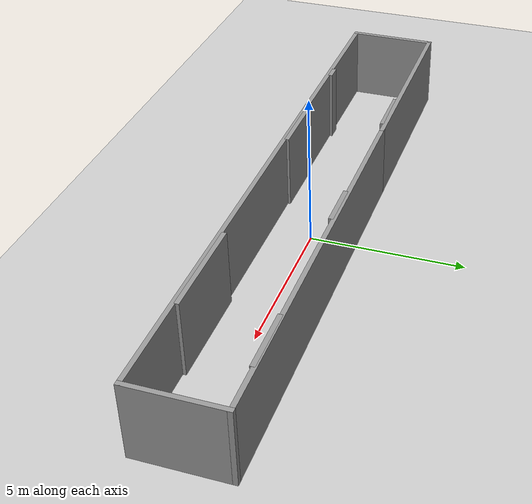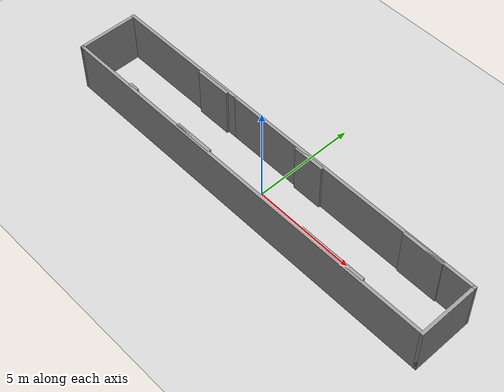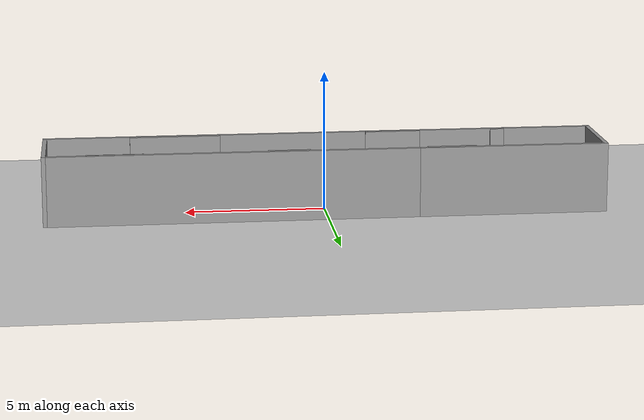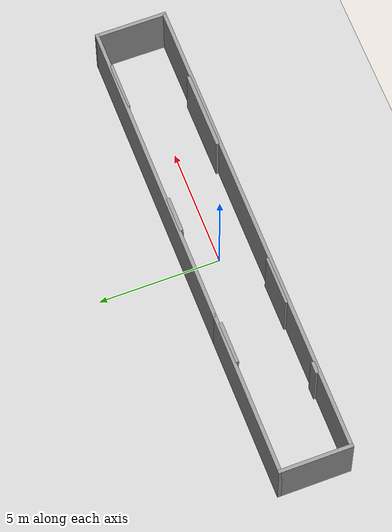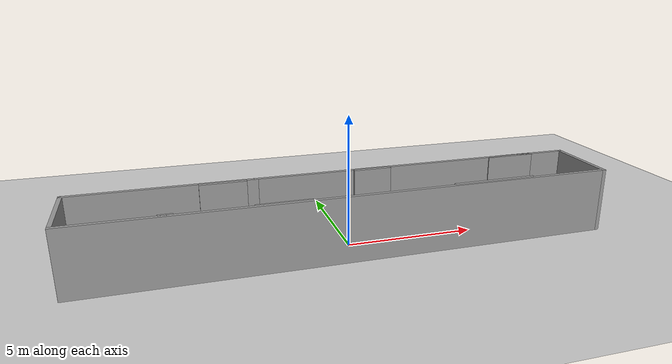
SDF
<sdf version="1.6">
 <world name="default">
  <light name="sun" type="directional">
   <pose>0 0 10 0 -0 0</pose>
   <diffuse>0.8 0.8 0.8 1</diffuse>
   <specular>0.2 0.2 0.2 1</specular>
   <attenuation>
    <range>1000</range>
    <constant>0.9</constant>
    <linear>0.01</linear>
    <quadratic>0.001</quadratic>
   </attenuation>
   <direction>-0.5 0.1 -0.9</direction>
  </light>
  <model name="ground_plane">
   <static>1</static>
   <link name="link">
    <collision name="collision">
     <geometry><plane><normal>0 0 1</normal><size>100 100</size></plane></geometry>
     <surface><friction><ode><mu>100</mu><mu2>50</mu2></ode></friction></surface>
    </collision>
    <visual name="visual">
     <cast_shadows>0</cast_shadows>
     <geometry><plane><normal>0 0 1</normal><size>100 100</size></plane></geometry>
     <material>
      <script><uri>file://media/materials/scripts/gazebo.material</uri><name>Gazebo/Grey</name></script>
     </material>
    </visual>
   </link>
  </model>
  <gravity>0 0 -9.8</gravity>
  <magnetic_field>6e-06 2.3e-05 -4.2e-05</magnetic_field>
  <atmosphere type="adiabatic"/>
  <physics name="default_physics" default="0" type="ode">
   <max_step_size>0.001</max_step_size>
   <real_time_factor>1</real_time_factor>
   <real_time_update_rate>1000</real_time_update_rate>
  </physics>
  <scene><ambient>0.4 0.4 0.4 1</ambient><background>0.7 0.7 0.7 1</background><shadows>1</shadows></scene>
  <spherical_coordinates>
   <surface_model>EARTH_WGS84</surface_model>
   <latitude_deg>0</latitude_deg>
   <longitude_deg>0</longitude_deg>
   <elevation>0</elevation>
   <heading_deg>0</heading_deg>
  </spherical_coordinates>
  <model name="w3m_sq">
   <link name="Wall_10">
    <collision name="Wall_10_Collision">
     <geometry><box><size>3 0.15 2.5</size></box></geometry>
     <pose>0 0 1.25 0 -0 0</pose>
    </collision>
    <visual name="Wall_10_Visual">
     <pose>0 0 1.25 0 -0 0</pose>
     <geometry><box><size>3 0.15 2.5</size></box></geometry>
     <material>
      <script><uri>file://media/materials/scripts/gazebo.material</uri><name>Gazebo/Grey</name></script>
      <ambient>1 1 1 1</ambient>
     </material>
     <meta><layer>0</layer></meta>
    </visual>
    <pose>9.925 0 0 0 -0 1.5708</pose>
   </link>
   <link name="Wall_11">
    <collision name="Wall_11_Collision">
     <geometry><box><size>13.25 0.15 2.5</size></box></geometry>
     <pose>0 0 1.25 0 -0 0</pose>
    </collision>
    <visual name="Wall_11_Visual">
     <pose>0 0 1.25 0 -0 0</pose>
     <geometry><box><size>13.25 0.15 2.5</size></box></geometry>
     <material>
      <script><uri>file://media/materials/scripts/gazebo.material</uri><name>Gazebo/Grey</name></script>
      <ambient>1 1 1 1</ambient>
     </material>
     <meta><layer>0</layer></meta>
    </visual>
    <pose>3.375 1.425 0 0 -0 3.14159</pose>
   </link>
   <link name="Wall_12">
    <collision name="Wall_12_Collision">
     <geometry><box><size>6.9 0.15 2.5</size></box></geometry>
     <pose>0 0 1.25 0 -0 0</pose>
    </collision>
    <visual name="Wall_12_Visual">
     <pose>0 0 1.25 0 -0 0</pose>
     <geometry><box><size>6.9 0.15 2.5</size></box></geometry>
     <material>
      <script><uri>file://media/materials/scripts/gazebo.material</uri><name>Gazebo/Grey</name></script>
      <ambient>1 1 1 1</ambient>
     </material>
     <meta><layer>0</layer></meta>
    </visual>
    <pose>-6.55 1.425 0 0 -0 3.14159</pose>
   </link>
   <link name="Wall_14">
    <collision name="Wall_14_Collision">
     <geometry><box><size>1.75 0.15 2.5</size></box></geometry>
     <pose>0 0 1.25 0 -0 0</pose>
    </collision>
    <visual name="Wall_14_Visual">
     <pose>0 0 1.25 0 -0 0</pose>
     <geometry><box><size>1.75 0.15 2.5</size></box></geometry>
     <material>
      <script><uri>file://media/materials/scripts/gazebo.material</uri><name>Gazebo/Grey</name></script>
      <ambient>1 1 1 1</ambient>
     </material>
     <meta><layer>0</layer></meta>
    </visual>
    <pose>-4.40786 1.32691 0 0 -0 0</pose>
   </link>
   <link name="Wall_16">
    <collision name="Wall_16_Collision">
     <geometry><box><size>2 0.15 2.5</size></box></geometry>
     <pose>0 0 1.25 0 -0 0</pose>
    </collision>
    <visual name="Wall_16_Visual">
     <pose>0 0 1.25 0 -0 0</pose>
     <geometry><box><size>2 0.15 2.5</size></box></geometry>
     <material>
      <script><uri>file://media/materials/scripts/gazebo.material</uri><name>Gazebo/Grey</name></script>
      <ambient>1 1 1 1</ambient>
     </material>
     <meta><layer>0</layer></meta>
    </visual>
    <pose>-2.65104 -1.3393 0 0 -0 0</pose>
   </link>
   <link name="Wall_18">
    <collision name="Wall_18_Collision">
     <geometry><box><size>1.5 0.15 2.5</size></box></geometry>
     <pose>0 0 1.25 0 -0 0</pose>
    </collision>
    <visual name="Wall_18_Visual">
     <pose>0 0 1.25 0 -0 0</pose>
     <geometry><box><size>1.5 0.15 2.5</size></box></geometry>
     <material>
      <script><uri>file://media/materials/scripts/gazebo.material</uri><name>Gazebo/Grey</name></script>
      <ambient>1 1 1 1</ambient>
     </material>
     <meta><layer>0</layer></meta>
    </visual>
    <pose>1.37025 1.33583 0 0 -0 0</pose>
   </link>
   <link name="Wall_21">
    <collision name="Wall_21_Collision">
     <geometry><box><size>3.25 0.15 2.5</size></box></geometry>
     <pose>0 0 1.25 0 -0 0</pose>
    </collision>
    <visual name="Wall_21_Visual">
     <pose>0 0 1.25 0 -0 0</pose>
     <geometry><box><size>3.25 0.15 2.5</size></box></geometry>
     <material>
      <script><uri>file://media/materials/scripts/gazebo.material</uri><name>Gazebo/Grey</name></script>
      <ambient>1 1 1 1</ambient>
     </material>
     <meta><layer>0</layer></meta>
    </visual>
    <pose>5.26814 -1.32146 0 0 -0 0</pose>
   </link>
   <link name="Wall_23">
    <collision name="Wall_23_Collision">
     <geometry><box><size>2 0.15 2.5</size></box></geometry>
     <pose>0 0 1.25 0 -0 0</pose>
    </collision>
    <visual name="Wall_23_Visual">
     <pose>0 0 1.25 0 -0 0</pose>
     <geometry><box><size>2 0.15 2.5</size></box></geometry>
     <material>
      <script><uri>file://media/materials/scripts/gazebo.material</uri><name>Gazebo/Grey</name></script>
      <ambient>1 1 1 1</ambient>
     </material>
     <meta><layer>0</layer></meta>
    </visual>
    <pose>7.46928 1.37735 0 0 -0 3.14159</pose>
   </link>
   <link name="Wall_25">
    <collision name="Wall_25_Collision">
     <geometry><box><size>0.5 0.15 2.5</size></box></geometry>
     <pose>0 0 1.25 0 -0 0</pose>
    </collision>
    <visual name="Wall_25_Visual">
     <pose>0 0 1.25 0 -0 0</pose>
     <geometry><box><size>0.5 0.15 2.5</size></box></geometry>
     <material>
      <script><uri>file://media/materials/scripts/gazebo.material</uri><name>Gazebo/Grey</name></script>
      <ambient>1 1 1 1</ambient>
     </material>
     <meta><layer>0</layer></meta>
    </visual>
    <pose>-6.52277 -1.33441 0 0 -0 0</pose>
   </link>
   <link name="Wall_8">
    <collision name="Wall_8_Collision">
     <geometry><box><size>3 0.15 2.5</size></box></geometry>
     <pose>0 0 1.25 0 -0 0</pose>
    </collision>
    <visual name="Wall_8_Visual">
     <pose>0 0 1.25 0 -0 0</pose>
     <geometry><box><size>3 0.15 2.5</size></box></geometry>
     <material>
      <script><uri>file://media/materials/scripts/gazebo.material</uri><name>Gazebo/Grey</name></script>
      <ambient>1 1 1 1</ambient>
     </material>
     <meta><layer>0</layer></meta>
    </visual>
    <pose>-9.925 0 0 0 -0 -1.5708</pose>
   </link>
   <link name="Wall_9">
    <collision name="Wall_9_Collision">
     <geometry><box><size>20 0.15 2.5</size></box></geometry>
     <pose>0 0 1.25 0 -0 0</pose>
    </collision>
    <visual name="Wall_9_Visual">
     <pose>0 0 1.25 0 -0 0</pose>
     <geometry><box><size>20 0.15 2.5</size></box></geometry>
     <material>
      <script><uri>file://media/materials/scripts/gazebo.material</uri><name>Gazebo/Grey</name></script>
      <ambient>1 1 1 1</ambient>
     </material>
     <meta><layer>0</layer></meta>
    </visual>
    <pose>-0 -1.425 0 0 -0 0</pose>
   </link>
   <static>1</static>
  </model>
 </world>
</sdf>
